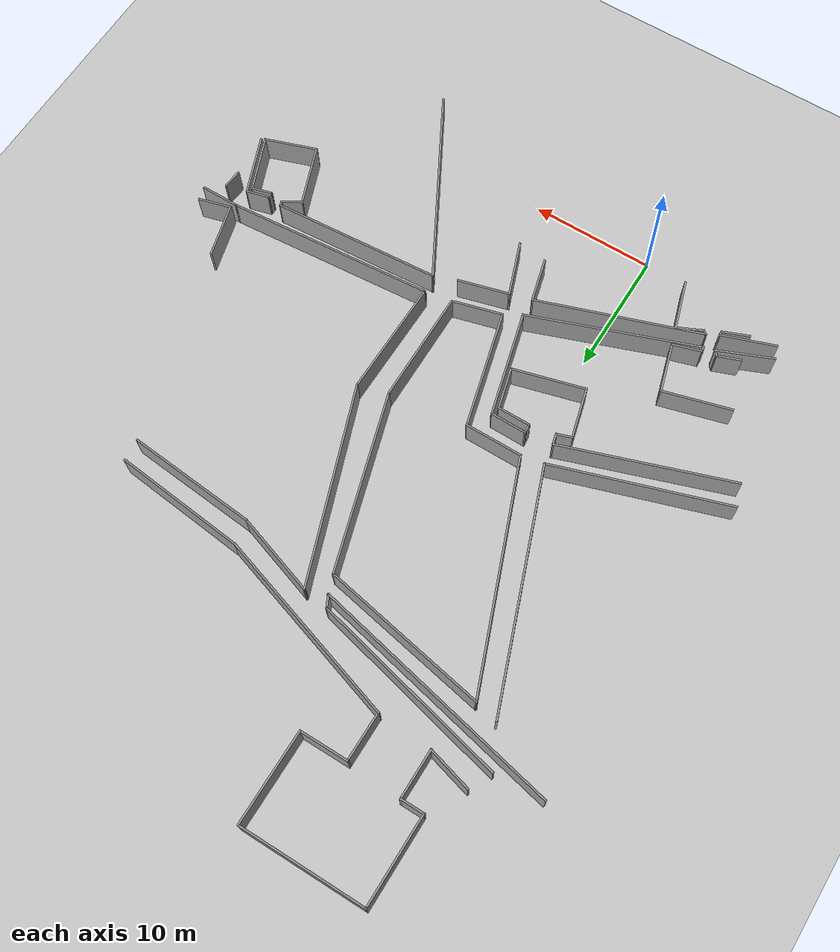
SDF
<sdf version="1.7">
 <world name="default">
  <model name="ground_plane">
   <static>1</static>
   <link name="link">
    <collision name="collision">
     <geometry><plane><normal>0 0 1</normal><size>100 100</size></plane></geometry>
     <surface><friction><ode><mu>100</mu><mu2>50</mu2></ode></friction></surface>
    </collision>
    <visual name="visual">
     <cast_shadows>0</cast_shadows>
     <geometry><plane><normal>0 0 1</normal><size>100 100</size></plane></geometry>
     <material>
      <script><uri>file://media/materials/scripts/gazebo.material</uri><name>Gazebo/Grey</name></script>
     </material>
    </visual>
   </link>
  </model>
  <model name="final_max_v1">
   <pose>-2.52311 0.689104 0 0 -0 0</pose>
   <link name="Wall_111">
    <collision name="Wall_111_Collision">
     <geometry><box><size>3.75 0.15 2.5</size></box></geometry>
     <pose>0 0 1.25 0 -0 0</pose>
    </collision>
    <visual name="Wall_111_Visual">
     <pose>0 0 1.25 0 -0 0</pose>
     <geometry><box><size>3.75 0.15 2.5</size></box></geometry>
     <material>
      <script><uri>file://media/materials/scripts/gazebo.material</uri><name>Gazebo/Grey</name></script>
      <ambient>1 1 1 1</ambient>
     </material>
     <meta><layer>0</layer></meta>
    </visual>
    <pose>-5.20804 41.6173 0 0 -0 -0.261799</pose>
   </link>
   <link name="Wall_112">
    <collision name="Wall_112_Collision">
     <geometry><box><size>4 0.15 2.5</size></box></geometry>
     <pose>0 0 1.25 0 -0 0</pose>
    </collision>
    <visual name="Wall_112_Visual">
     <pose>0 0 1.25 0 -0 0</pose>
     <geometry><box><size>4 0.15 2.5</size></box></geometry>
     <material>
      <script><uri>file://media/materials/scripts/gazebo.material</uri><name>Gazebo/Grey</name></script>
      <ambient>1 1 1 1</ambient>
     </material>
     <meta><layer>0</layer></meta>
    </visual>
    <pose>-3.46937 43.0764 0 0 -0 1.5708</pose>
   </link>
   <link name="Wall_113">
    <collision name="Wall_113_Collision">
     <geometry><box><size>2 0.15 2.5</size></box></geometry>
     <pose>0 0 1.25 0 -0 0</pose>
    </collision>
    <visual name="Wall_113_Visual">
     <pose>0 0 1.25 0 -0 0</pose>
     <geometry><box><size>2 0.15 2.5</size></box></geometry>
     <material>
      <script><uri>file://media/materials/scripts/gazebo.material</uri><name>Gazebo/Grey</name></script>
      <ambient>1 1 1 1</ambient>
     </material>
     <meta><layer>0</layer></meta>
    </visual>
    <pose>-4.39437 45.0014 0 0 -0 3.14159</pose>
   </link>
   <link name="Wall_114">
    <collision name="Wall_114_Collision">
     <geometry><box><size>7.25 0.15 2.5</size></box></geometry>
     <pose>0 0 1.25 0 -0 0</pose>
    </collision>
    <visual name="Wall_114_Visual">
     <pose>0 0 1.25 0 -0 0</pose>
     <geometry><box><size>7.25 0.15 2.5</size></box></geometry>
     <material>
      <script><uri>file://media/materials/scripts/gazebo.material</uri><name>Gazebo/Grey</name></script>
      <ambient>1 1 1 1</ambient>
     </material>
     <meta><layer>0</layer></meta>
    </visual>
    <pose>-5.31937 48.5514 0 0 -0 1.5708</pose>
   </link>
   <link name="Wall_115">
    <collision name="Wall_115_Collision">
     <geometry><box><size>10.25 0.15 2.5</size></box></geometry>
     <pose>0 0 1.25 0 -0 0</pose>
    </collision>
    <visual name="Wall_115_Visual">
     <pose>0 0 1.25 0 -0 0</pose>
     <geometry><box><size>10.25 0.15 2.5</size></box></geometry>
     <material>
      <script><uri>file://media/materials/scripts/gazebo.material</uri><name>Gazebo/Grey</name></script>
      <ambient>1 1 1 1</ambient>
     </material>
     <meta><layer>0</layer></meta>
    </visual>
    <pose>-0.269373 52.1014 0 0 -0 0</pose>
   </link>
   <link name="Wall_116">
    <collision name="Wall_116_Collision">
     <geometry><box><size>7.5 0.15 2.5</size></box></geometry>
     <pose>0 0 1.25 0 -0 0</pose>
    </collision>
    <visual name="Wall_116_Visual">
     <pose>0 0 1.25 0 -0 0</pose>
     <geometry><box><size>7.5 0.15 2.5</size></box></geometry>
     <material>
      <script><uri>file://media/materials/scripts/gazebo.material</uri><name>Gazebo/Grey</name></script>
      <ambient>1 1 1 1</ambient>
     </material>
     <meta><layer>0</layer></meta>
    </visual>
    <pose>4.78063 48.4264 0 0 -0 -1.5708</pose>
   </link>
   <link name="Wall_117">
    <collision name="Wall_117_Collision">
     <geometry><box><size>4 0.15 2.5</size></box></geometry>
     <pose>0 0 1.25 0 -0 0</pose>
    </collision>
    <visual name="Wall_117_Visual">
     <pose>0 0 1.25 0 -0 0</pose>
     <geometry><box><size>4 0.15 2.5</size></box></geometry>
     <material>
      <script><uri>file://media/materials/scripts/gazebo.material</uri><name>Gazebo/Grey</name></script>
      <ambient>1 1 1 1</ambient>
     </material>
     <meta><layer>0</layer></meta>
    </visual>
    <pose>2.85563 44.7514 0 0 -0 3.14159</pose>
   </link>
   <link name="Wall_118">
    <collision name="Wall_118_Collision">
     <geometry><box><size>4 0.15 2.5</size></box></geometry>
     <pose>0 0 1.25 0 -0 0</pose>
    </collision>
    <visual name="Wall_118_Visual">
     <pose>0 0 1.25 0 -0 0</pose>
     <geometry><box><size>4 0.15 2.5</size></box></geometry>
     <material>
      <script><uri>file://media/materials/scripts/gazebo.material</uri><name>Gazebo/Grey</name></script>
      <ambient>1 1 1 1</ambient>
     </material>
     <meta><layer>0</layer></meta>
    </visual>
    <pose>0.930627 42.8264 0 0 -0 -1.5708</pose>
   </link>
   <link name="Wall_119">
    <collision name="Wall_119_Collision">
     <geometry><box><size>16.165 0.15 2.5</size></box></geometry>
     <pose>0 0 1.25 0 -0 0</pose>
    </collision>
    <visual name="Wall_119_Visual">
     <pose>0 0 1.25 0 -0 0</pose>
     <geometry><box><size>16.165 0.15 2.5</size></box></geometry>
     <material>
      <script><uri>file://media/materials/scripts/gazebo.material</uri><name>Gazebo/Grey</name></script>
      <ambient>1 1 1 1</ambient>
     </material>
     <meta><layer>0</layer></meta>
    </visual>
    <pose>8.5693 38.4991 0 0 -0 -0.304697</pose>
   </link>
   <link name="Wall_120">
    <collision name="Wall_120_Collision">
     <geometry><box><size>10.7874 0.15 2.5</size></box></geometry>
     <pose>0 0 1.25 0 -0 0</pose>
    </collision>
    <visual name="Wall_120_Visual">
     <pose>0 0 1.25 0 -0 0</pose>
     <geometry><box><size>10.7874 0.15 2.5</size></box></geometry>
     <material>
      <script><uri>file://media/materials/scripts/gazebo.material</uri><name>Gazebo/Grey</name></script>
      <ambient>1 1 1 1</ambient>
     </material>
     <meta><layer>0</layer></meta>
    </visual>
    <pose>21.498 35.5448 0 0 -0 -0.103972</pose>
   </link>
   <link name="Wall_159">
    <collision name="Wall_159_Collision">
     <geometry><box><size>16.3963 0.15 2.5</size></box></geometry>
     <pose>0 0 1.25 0 -0 0</pose>
    </collision>
    <visual name="Wall_159_Visual">
     <pose>0 0 1.25 0 -0 0</pose>
     <geometry><box><size>16.3963 0.15 2.5</size></box></geometry>
     <material>
      <script><uri>file://media/materials/scripts/gazebo.material</uri><name>Gazebo/Grey</name></script>
      <ambient>1 1 1 1</ambient>
     </material>
     <meta><layer>0</layer></meta>
    </visual>
    <pose>0.113766 38.435 0 0 -0 -0.228497</pose>
   </link>
   <link name="Wall_164">
    <collision name="Wall_164_Collision">
     <geometry><box><size>9.16316 0.15 2.5</size></box></geometry>
     <pose>0 0 1.25 0 -0 0</pose>
    </collision>
    <visual name="Wall_164_Visual">
     <pose>0 0 1.25 0 -0 0</pose>
     <geometry><box><size>9.16316 0.15 2.5</size></box></geometry>
     <material>
      <script><uri>file://media/materials/scripts/gazebo.material</uri><name>Gazebo/Grey</name></script>
      <ambient>1 1 1 1</ambient>
     </material>
     <meta><layer>0</layer></meta>
    </visual>
    <pose>13.3066 15.8045 0 0 -0 -1.56262</pose>
   </link>
   <link name="Wall_167">
    <collision name="Wall_167_Collision">
     <geometry><box><size>4 0.15 2.5</size></box></geometry>
     <pose>0 0 1.25 0 -0 0</pose>
    </collision>
    <visual name="Wall_167_Visual">
     <pose>0 0 1.25 0 -0 0</pose>
     <geometry><box><size>4 0.15 2.5</size></box></geometry>
     <material>
      <script><uri>file://media/materials/scripts/gazebo.material</uri><name>Gazebo/Grey</name></script>
      <ambient>1 1 1 1</ambient>
     </material>
     <meta><layer>0</layer></meta>
    </visual>
    <pose>11.3094 10.7013 0 0 -0 0.261799</pose>
   </link>
   <link name="Wall_169">
    <collision name="Wall_169_Collision">
     <geometry><box><size>9.75 0.15 2.5</size></box></geometry>
     <pose>0 0 1.25 0 -0 0</pose>
    </collision>
    <visual name="Wall_169_Visual">
     <pose>0 0 1.25 0 -0 0</pose>
     <geometry><box><size>9.75 0.15 2.5</size></box></geometry>
     <material>
      <script><uri>file://media/materials/scripts/gazebo.material</uri><name>Gazebo/Grey</name></script>
      <ambient>1 1 1 1</ambient>
     </material>
     <meta><layer>0</layer></meta>
    </visual>
    <pose>8.20764 14.8395 0 0 -0 1.8326</pose>
   </link>
   <link name="Wall_171">
    <collision name="Wall_171_Collision">
     <geometry><box><size>4.75 0.15 2.5</size></box></geometry>
     <pose>0 0 1.25 0 -0 0</pose>
    </collision>
    <visual name="Wall_171_Visual">
     <pose>0 0 1.25 0 -0 0</pose>
     <geometry><box><size>4.75 0.15 2.5</size></box></geometry>
     <material>
      <script><uri>file://media/materials/scripts/gazebo.material</uri><name>Gazebo/Grey</name></script>
      <ambient>1 1 1 1</ambient>
     </material>
     <meta><layer>0</layer></meta>
    </visual>
    <pose>4.66531 19.476 0 0 -0 3.14159</pose>
   </link>
   <link name="Wall_191">
    <collision name="Wall_191_Collision">
     <geometry><box><size>20.8467 0.15 2.5</size></box></geometry>
     <pose>0 0 1.25 0 -0 0</pose>
    </collision>
    <visual name="Wall_191_Visual">
     <pose>0 0 1.25 0 -0 0</pose>
     <geometry><box><size>20.8467 0.15 2.5</size></box></geometry>
     <material>
      <script><uri>file://media/materials/scripts/gazebo.material</uri><name>Gazebo/Grey</name></script>
      <ambient>1 1 1 1</ambient>
     </material>
     <meta><layer>0</layer></meta>
    </visual>
    <pose>-1.63858 37.8537 0 0 -0 -0.210472</pose>
   </link>
   <link name="Wall_193">
    <collision name="Wall_193_Collision">
     <geometry><box><size>1.1617 0.15 2.5</size></box></geometry>
     <pose>0 0 1.25 0 -0 0</pose>
    </collision>
    <visual name="Wall_193_Visual">
     <pose>0 0 1.25 0 -0 0</pose>
     <geometry><box><size>1.1617 0.15 2.5</size></box></geometry>
     <material>
      <script><uri>file://media/materials/scripts/gazebo.material</uri><name>Gazebo/Grey</name></script>
      <ambient>1 1 1 1</ambient>
     </material>
     <meta><layer>0</layer></meta>
    </visual>
    <pose>8.25359 36.1433 0 0 -0 2.03799</pose>
   </link>
   <link name="Wall_211">
    <collision name="Wall_211_Collision">
     <geometry><box><size>14.7253 0.15 2.5</size></box></geometry>
     <pose>0 0 1.25 0 -0 0</pose>
    </collision>
    <visual name="Wall_211_Visual">
     <pose>0 0 1.25 0 -0 0</pose>
     <geometry><box><size>14.7253 0.15 2.5</size></box></geometry>
     <material>
      <script><uri>file://media/materials/scripts/gazebo.material</uri><name>Gazebo/Grey</name></script>
      <ambient>1 1 1 1</ambient>
     </material>
     <meta><layer>0</layer></meta>
    </visual>
    <pose>11.1463 27.2824 0 0 -0 -1.27513</pose>
   </link>
   <link name="Wall_213">
    <collision name="Wall_213_Collision">
     <geometry><box><size>9.53445 0.15 2.5</size></box></geometry>
     <pose>0 0 1.25 0 -0 0</pose>
    </collision>
    <visual name="Wall_213_Visual">
     <pose>0 0 1.25 0 -0 0</pose>
     <geometry><box><size>9.53445 0.15 2.5</size></box></geometry>
     <material>
      <script><uri>file://media/materials/scripts/gazebo.material</uri><name>Gazebo/Grey</name></script>
      <ambient>1 1 1 1</ambient>
     </material>
     <meta><layer>0</layer></meta>
    </visual>
    <pose>15.6009 16.3138 0 0 -0 1.56099</pose>
   </link>
   <link name="Wall_215">
    <collision name="Wall_215_Collision">
     <geometry><box><size>16.389 0.15 2.5</size></box></geometry>
     <pose>0 0 1.25 0 -0 0</pose>
    </collision>
    <visual name="Wall_215_Visual">
     <pose>0 0 1.25 0 -0 0</pose>
     <geometry><box><size>16.389 0.15 2.5</size></box></geometry>
     <material>
      <script><uri>file://media/materials/scripts/gazebo.material</uri><name>Gazebo/Grey</name></script>
      <ambient>1 1 1 1</ambient>
     </material>
     <meta><layer>0</layer></meta>
    </visual>
    <pose>12.8869 28.6418 0 0 -0 1.91763</pose>
   </link>
   <link name="Wall_217">
    <collision name="Wall_217_Collision">
     <geometry><box><size>6.92872 0.15 2.5</size></box></geometry>
     <pose>0 0 1.25 0 -0 0</pose>
    </collision>
    <visual name="Wall_217_Visual">
     <pose>0 0 1.25 0 -0 0</pose>
     <geometry><box><size>6.92872 0.15 2.5</size></box></geometry>
     <material>
      <script><uri>file://media/materials/scripts/gazebo.material</uri><name>Gazebo/Grey</name></script>
      <ambient>1 1 1 1</ambient>
     </material>
     <meta><layer>0</layer></meta>
    </visual>
    <pose>13.3469 35.2198 0 0 -0 -0.317459</pose>
   </link>
   <link name="Wall_219">
    <collision name="Wall_219_Collision">
     <geometry><box><size>10.5866 0.15 2.5</size></box></geometry>
     <pose>0 0 1.25 0 -0 0</pose>
    </collision>
    <visual name="Wall_219_Visual">
     <pose>0 0 1.25 0 -0 0</pose>
     <geometry><box><size>10.5866 0.15 2.5</size></box></geometry>
     <material>
      <script><uri>file://media/materials/scripts/gazebo.material</uri><name>Gazebo/Grey</name></script>
      <ambient>1 1 1 1</ambient>
     </material>
     <meta><layer>0</layer></meta>
    </visual>
    <pose>21.7649 33.7018 0 0 -0 -0.088266</pose>
   </link>
   <link name="Wall_235">
    <collision name="Wall_235_Collision">
     <geometry><box><size>5.08472 0.15 2.5</size></box></geometry>
     <pose>0 0 1.25 0 -0 0</pose>
    </collision>
    <visual name="Wall_235_Visual">
     <pose>0 0 1.25 0 -0 0</pose>
     <geometry><box><size>5.08472 0.15 2.5</size></box></geometry>
     <material>
      <script><uri>file://media/materials/scripts/gazebo.material</uri><name>Gazebo/Grey</name></script>
      <ambient>1 1 1 1</ambient>
     </material>
     <meta><layer>0</layer></meta>
    </visual>
    <pose>33.2205 9.10764 0 0 -0 1.94607</pose>
   </link>
   <link name="Wall_237">
    <collision name="Wall_237_Collision">
     <geometry><box><size>16.5284 0.15 2.5</size></box></geometry>
     <pose>0 0 1.25 0 -0 0</pose>
    </collision>
    <visual name="Wall_237_Visual">
     <pose>0 0 1.25 0 -0 0</pose>
     <geometry><box><size>16.5284 0.15 2.5</size></box></geometry>
     <material>
      <script><uri>file://media/materials/scripts/gazebo.material</uri><name>Gazebo/Grey</name></script>
      <ambient>1 1 1 1</ambient>
     </material>
     <meta><layer>0</layer></meta>
    </visual>
    <pose>19.7248 2.9859 0 0 -0 -1.06535</pose>
   </link>
   <link name="Wall_240">
    <collision name="Wall_240_Collision">
     <geometry><box><size>16.9278 0.15 2.5</size></box></geometry>
     <pose>0 0 1.25 0 -0 0</pose>
    </collision>
    <visual name="Wall_240_Visual">
     <pose>0 0 1.25 0 -0 0</pose>
     <geometry><box><size>16.9278 0.15 2.5</size></box></geometry>
     <material>
      <script><uri>file://media/materials/scripts/gazebo.material</uri><name>Gazebo/Grey</name></script>
      <ambient>1 1 1 1</ambient>
     </material>
     <meta><layer>0</layer></meta>
    </visual>
    <pose>23.9191 12.2642 0 0 -0 0.076646</pose>
   </link>
   <link name="Wall_241">
    <collision name="Wall_241_Collision">
     <geometry><box><size>3.25 0.15 2.5</size></box></geometry>
     <pose>0 0 1.25 0 -0 0</pose>
    </collision>
    <visual name="Wall_241_Visual">
     <pose>0 0 1.25 0 -0 0</pose>
     <geometry><box><size>3.25 0.15 2.5</size></box></geometry>
     <material>
      <script><uri>file://media/materials/scripts/gazebo.material</uri><name>Gazebo/Grey</name></script>
      <ambient>1 1 1 1</ambient>
     </material>
     <meta><layer>0</layer></meta>
    </visual>
    <pose>33.8334 12.9065 0 0 -0 0</pose>
   </link>
   <link name="Wall_243">
    <collision name="Wall_243_Collision">
     <geometry><box><size>2.75 0.15 2.5</size></box></geometry>
     <pose>0 0 1.25 0 -0 0</pose>
    </collision>
    <visual name="Wall_243_Visual">
     <pose>0 0 1.25 0 -0 0</pose>
     <geometry><box><size>2.75 0.15 2.5</size></box></geometry>
     <material>
      <script><uri>file://media/materials/scripts/gazebo.material</uri><name>Gazebo/Grey</name></script>
      <ambient>1 1 1 1</ambient>
     </material>
     <meta><layer>0</layer></meta>
    </visual>
    <pose>33.843 13.6326 0 0 -0 -2.87979</pose>
   </link>
   <link name="Wall_244">
    <collision name="Wall_244_Collision">
     <geometry><box><size>4.5 0.15 2.5</size></box></geometry>
     <pose>0 0 1.25 0 -0 0</pose>
    </collision>
    <visual name="Wall_244_Visual">
     <pose>0 0 1.25 0 -0 0</pose>
     <geometry><box><size>4.5 0.15 2.5</size></box></geometry>
     <material>
      <script><uri>file://media/materials/scripts/gazebo.material</uri><name>Gazebo/Grey</name></script>
      <ambient>1 1 1 1</ambient>
     </material>
     <meta><layer>0</layer></meta>
    </visual>
    <pose>32.0243 15.397 0 0 -0 1.8326</pose>
   </link>
   <link name="Wall_297">
    <collision name="Wall_297_Collision">
     <geometry><box><size>1.5986 0.15 2.5</size></box></geometry>
     <pose>0 0 1.25 0 -0 0</pose>
    </collision>
    <visual name="Wall_297_Visual">
     <pose>0 0 1.25 0 -0 0</pose>
     <geometry><box><size>1.5986 0.15 2.5</size></box></geometry>
     <material>
      <script><uri>file://media/materials/scripts/gazebo.material</uri><name>Gazebo/Grey</name></script>
      <ambient>1 1 1 1</ambient>
     </material>
     <meta><layer>0</layer></meta>
    </visual>
    <pose>33.9562 11.0945 0 0 -0 -1.65394</pose>
   </link>
   <link name="Wall_332">
    <collision name="Wall_332_Collision">
     <geometry><box><size>2.01562 0.15 2.5</size></box></geometry>
     <pose>0 0 1.25 0 -0 0</pose>
    </collision>
    <visual name="Wall_332_Visual">
     <pose>0 0 1.25 0 -0 0</pose>
     <geometry><box><size>2.01562 0.15 2.5</size></box></geometry>
     <material>
      <script><uri>file://media/materials/scripts/gazebo.material</uri><name>Gazebo/Grey</name></script>
      <ambient>1 1 1 1</ambient>
     </material>
     <meta><layer>0</layer></meta>
    </visual>
    <pose>-6.96698 4.42497 0 0 -0 -2.77905</pose>
   </link>
   <link name="Wall_334">
    <collision name="Wall_334_Collision">
     <geometry><box><size>5.63652 0.15 2.5</size></box></geometry>
     <pose>0 0 1.25 0 -0 0</pose>
    </collision>
    <visual name="Wall_334_Visual">
     <pose>0 0 1.25 0 -0 0</pose>
     <geometry><box><size>5.63652 0.15 2.5</size></box></geometry>
     <material>
      <script><uri>file://media/materials/scripts/gazebo.material</uri><name>Gazebo/Grey</name></script>
      <ambient>1 1 1 1</ambient>
     </material>
     <meta><layer>0</layer></meta>
    </visual>
    <pose>-6.57601 8.78584 0 0 -0 0.266252</pose>
   </link>
   <link name="Wall_335">
    <collision name="Wall_335_Collision">
     <geometry><box><size>4.16566 0.15 2.5</size></box></geometry>
     <pose>0 0 1.25 0 -0 0</pose>
    </collision>
    <visual name="Wall_335_Visual">
     <pose>0 0 1.25 0 -0 0</pose>
     <geometry><box><size>4.16566 0.15 2.5</size></box></geometry>
     <material>
      <script><uri>file://media/materials/scripts/gazebo.material</uri><name>Gazebo/Grey</name></script>
      <ambient>1 1 1 1</ambient>
     </material>
     <meta><layer>0</layer></meta>
    </visual>
    <pose>-3.35798 7.58284 0 0 -0 -1.28221</pose>
   </link>
   <link name="Wall_336">
    <collision name="Wall_336_Collision">
     <geometry><box><size>2.41423 0.15 2.5</size></box></geometry>
     <pose>0 0 1.25 0 -0 0</pose>
    </collision>
    <visual name="Wall_336_Visual">
     <pose>0 0 1.25 0 -0 0</pose>
     <geometry><box><size>2.41423 0.15 2.5</size></box></geometry>
     <material>
      <script><uri>file://media/materials/scripts/gazebo.material</uri><name>Gazebo/Grey</name></script>
      <ambient>1 1 1 1</ambient>
     </material>
     <meta><layer>0</layer></meta>
    </visual>
    <pose>-3.86926 5.32722 0 0 -0 -2.84505</pose>
   </link>
   <link name="Wall_345">
    <collision name="Wall_345_Collision">
     <geometry><box><size>4.15324 0.15 2.5</size></box></geometry>
     <pose>0 0 1.25 0 -0 0</pose>
    </collision>
    <visual name="Wall_345_Visual">
     <pose>0 0 1.25 0 -0 0</pose>
     <geometry><box><size>4.15324 0.15 2.5</size></box></geometry>
     <material>
      <script><uri>file://media/materials/scripts/gazebo.material</uri><name>Gazebo/Grey</name></script>
      <ambient>1 1 1 1</ambient>
     </material>
     <meta><layer>0</layer></meta>
    </visual>
    <pose>-1.7389 2.34911 0 0 -0 1.87602</pose>
   </link>
   <link name="Wall_352">
    <collision name="Wall_352_Collision">
     <geometry><box><size>2.28681 0.15 2.5</size></box></geometry>
     <pose>0 0 1.25 0 -0 0</pose>
    </collision>
    <visual name="Wall_352_Visual">
     <pose>0 0 1.25 0 -0 0</pose>
     <geometry><box><size>2.28681 0.15 2.5</size></box></geometry>
     <material>
      <script><uri>file://media/materials/scripts/gazebo.material</uri><name>Gazebo/Grey</name></script>
      <ambient>1 1 1 1</ambient>
     </material>
     <meta><layer>0</layer></meta>
    </visual>
    <pose>-6.47244 2.34911 0 0 -0 0.375961</pose>
   </link>
   <link name="Wall_354">
    <collision name="Wall_354_Collision">
     <geometry><box><size>2.27975 0.15 2.5</size></box></geometry>
     <pose>0 0 1.25 0 -0 0</pose>
    </collision>
    <visual name="Wall_354_Visual">
     <pose>0 0 1.25 0 -0 0</pose>
     <geometry><box><size>2.27975 0.15 2.5</size></box></geometry>
     <material>
      <script><uri>file://media/materials/scripts/gazebo.material</uri><name>Gazebo/Grey</name></script>
      <ambient>1 1 1 1</ambient>
     </material>
     <meta><layer>0</layer></meta>
    </visual>
    <pose>-3.30803 3.81363 0 0 -0 -2.7109</pose>
   </link>
   <link name="Wall_364">
    <collision name="Wall_364_Collision">
     <geometry><box><size>0.497007 0.15 2.5</size></box></geometry>
     <pose>0 0 1.25 0 -0 0</pose>
    </collision>
    <visual name="Wall_364_Visual">
     <pose>0 0 1.25 0 -0 0</pose>
     <geometry><box><size>0.497007 0.15 2.5</size></box></geometry>
     <material>
      <script><uri>file://media/materials/scripts/gazebo.material</uri><name>Gazebo/Grey</name></script>
      <ambient>1 1 1 1</ambient>
     </material>
     <meta><layer>0</layer></meta>
    </visual>
    <pose>-5.98113 4.62472 0 0 -0 2.28524</pose>
   </link>
   <link name="Wall_366">
    <collision name="Wall_366_Collision">
     <geometry><box><size>0.515419 0.15 2.5</size></box></geometry>
     <pose>0 0 1.25 0 -0 0</pose>
    </collision>
    <visual name="Wall_366_Visual">
     <pose>0 0 1.25 0 -0 0</pose>
     <geometry><box><size>0.515419 0.15 2.5</size></box></geometry>
     <material>
      <script><uri>file://media/materials/scripts/gazebo.material</uri><name>Gazebo/Grey</name></script>
      <ambient>1 1 1 1</ambient>
     </material>
     <meta><layer>0</layer></meta>
    </visual>
    <pose>-4.94543 4.8138 0 0 -0 1.60655</pose>
   </link>
   <link name="Wall_368">
    <collision name="Wall_368_Collision">
     <geometry><box><size>0.458009 0.15 2.5</size></box></geometry>
     <pose>0 0 1.25 0 -0 0</pose>
    </collision>
    <visual name="Wall_368_Visual">
     <pose>0 0 1.25 0 -0 0</pose>
     <geometry><box><size>0.458009 0.15 2.5</size></box></geometry>
     <material>
      <script><uri>file://media/materials/scripts/gazebo.material</uri><name>Gazebo/Grey</name></script>
      <ambient>1 1 1 1</ambient>
     </material>
     <meta><layer>0</layer></meta>
    </visual>
    <pose>-5.4839 2.89531 0 0 -0 -1.53674</pose>
   </link>
   <link name="Wall_370">
    <collision name="Wall_370_Collision">
     <geometry><box><size>0.49586 0.15 2.5</size></box></geometry>
     <pose>0 0 1.25 0 -0 0</pose>
    </collision>
    <visual name="Wall_370_Visual">
     <pose>0 0 1.25 0 -0 0</pose>
     <geometry><box><size>0.49586 0.15 2.5</size></box></geometry>
     <material>
      <script><uri>file://media/materials/scripts/gazebo.material</uri><name>Gazebo/Grey</name></script>
      <ambient>1 1 1 1</ambient>
     </material>
     <meta><layer>0</layer></meta>
    </visual>
    <pose>-4.41813 3.46707 0 0 -0 -0.602649</pose>
   </link>
   <link name="Wall_372">
    <collision name="Wall_372_Collision">
     <geometry><box><size>14.0321 0.15 2.5</size></box></geometry>
     <pose>0 0 1.25 0 -0 0</pose>
    </collision>
    <visual name="Wall_372_Visual">
     <pose>0 0 1.25 0 -0 0</pose>
     <geometry><box><size>14.0321 0.15 2.5</size></box></geometry>
     <material>
      <script><uri>file://media/materials/scripts/gazebo.material</uri><name>Gazebo/Grey</name></script>
      <ambient>1 1 1 1</ambient>
     </material>
     <meta><layer>0</layer></meta>
    </visual>
    <pose>1.57832 7.01954 0 0 -0 0.351268</pose>
   </link>
   <link name="Wall_374">
    <collision name="Wall_374_Collision">
     <geometry><box><size>8.75 0.15 2.5</size></box></geometry>
     <pose>0 0 1.25 0 -0 0</pose>
    </collision>
    <visual name="Wall_374_Visual">
     <pose>0 0 1.25 0 -0 0</pose>
     <geometry><box><size>8.75 0.15 2.5</size></box></geometry>
     <material>
      <script><uri>file://media/materials/scripts/gazebo.material</uri><name>Gazebo/Grey</name></script>
      <ambient>1 1 1 1</ambient>
     </material>
     <meta><layer>0</layer></meta>
    </visual>
    <pose>6.98261 13.5614 0 0 -0 1.8326</pose>
   </link>
   <link name="Wall_378">
    <collision name="Wall_378_Collision">
     <geometry><box><size>18.7028 0.15 2.5</size></box></geometry>
     <pose>0 0 1.25 0 -0 0</pose>
    </collision>
    <visual name="Wall_378_Visual">
     <pose>0 0 1.25 0 -0 0</pose>
     <geometry><box><size>18.7028 0.15 2.5</size></box></geometry>
     <material>
      <script><uri>file://media/materials/scripts/gazebo.material</uri><name>Gazebo/Grey</name></script>
      <ambient>1 1 1 1</ambient>
     </material>
     <meta><layer>0</layer></meta>
    </visual>
    <pose>-1.00084 28.1201 0 0 -0 1.94215</pose>
   </link>
   <link name="Wall_379">
    <collision name="Wall_379_Collision">
     <geometry><box><size>13.7731 0.15 2.5</size></box></geometry>
     <pose>0 0 1.25 0 -0 0</pose>
    </collision>
    <visual name="Wall_379_Visual">
     <pose>0 0 1.25 0 -0 0</pose>
     <geometry><box><size>13.7731 0.15 2.5</size></box></geometry>
     <material>
      <script><uri>file://media/materials/scripts/gazebo.material</uri><name>Gazebo/Grey</name></script>
      <ambient>1 1 1 1</ambient>
     </material>
     <meta><layer>0</layer></meta>
    </visual>
    <pose>2.32793 35.509 0 0 -0 -0.18533</pose>
   </link>
   <link name="Wall_381">
    <collision name="Wall_381_Collision">
     <geometry><box><size>14.3834 0.15 2.5</size></box></geometry>
     <pose>0 0 1.25 0 -0 0</pose>
    </collision>
    <visual name="Wall_381_Visual">
     <pose>0 0 1.25 0 -0 0</pose>
     <geometry><box><size>14.3834 0.15 2.5</size></box></geometry>
     <material>
      <script><uri>file://media/materials/scripts/gazebo.material</uri><name>Gazebo/Grey</name></script>
      <ambient>1 1 1 1</ambient>
     </material>
     <meta><layer>0</layer></meta>
    </visual>
    <pose>-6.23233 16.9329 0 0 -0 0.313621</pose>
   </link>
   <link name="Wall_383">
    <collision name="Wall_383_Collision">
     <geometry><box><size>19.4012 0.15 2.5</size></box></geometry>
     <pose>0 0 1.25 0 -0 0</pose>
    </collision>
    <visual name="Wall_383_Visual">
     <pose>0 0 1.25 0 -0 0</pose>
     <geometry><box><size>19.4012 0.15 2.5</size></box></geometry>
     <material>
      <script><uri>file://media/materials/scripts/gazebo.material</uri><name>Gazebo/Grey</name></script>
      <ambient>1 1 1 1</ambient>
     </material>
     <meta><layer>0</layer></meta>
    </visual>
    <pose>-2.84755 28.1393 0 0 -0 -1.21147</pose>
   </link>
   <link name="Wall_448">
    <collision name="Wall_448_Collision">
     <geometry><box><size>4.52238 0.15 2.5</size></box></geometry>
     <pose>0 0 1.25 0 -0 0</pose>
    </collision>
    <visual name="Wall_448_Visual">
     <pose>0 0 1.25 0 -0 0</pose>
     <geometry><box><size>4.52238 0.15 2.5</size></box></geometry>
     <material>
      <script><uri>file://media/materials/scripts/gazebo.material</uri><name>Gazebo/Grey</name></script>
      <ambient>1 1 1 1</ambient>
     </material>
     <meta><layer>0</layer></meta>
    </visual>
    <pose>-7.5526 2.32702 0 0 -0 0.336675</pose>
   </link>
   <link name="Wall_450">
    <collision name="Wall_450_Collision">
     <geometry><box><size>4.64704 0.15 2.5</size></box></geometry>
     <pose>0 0 1.25 0 -0 0</pose>
    </collision>
    <visual name="Wall_450_Visual">
     <pose>0 0 1.25 0 -0 0</pose>
     <geometry><box><size>4.64704 0.15 2.5</size></box></geometry>
     <material>
      <script><uri>file://media/materials/scripts/gazebo.material</uri><name>Gazebo/Grey</name></script>
      <ambient>1 1 1 1</ambient>
     </material>
     <meta><layer>0</layer></meta>
    </visual>
    <pose>-7.88723 3.50809 0 0 -0 0.398042</pose>
   </link>
   <link name="Wall_454">
    <collision name="Wall_454_Collision">
     <geometry><box><size>3.75 0.15 2.5</size></box></geometry>
     <pose>0 0 1.25 0 -0 0</pose>
    </collision>
    <visual name="Wall_454_Visual">
     <pose>0 0 1.25 0 -0 0</pose>
     <geometry><box><size>3.75 0.15 2.5</size></box></geometry>
     <material>
      <script><uri>file://media/materials/scripts/gazebo.material</uri><name>Gazebo/Grey</name></script>
      <ambient>1 1 1 1</ambient>
     </material>
     <meta><layer>0</layer></meta>
    </visual>
    <pose>8.61161 6.18595 0 0 -0 1.8326</pose>
   </link>
   <link name="Wall_455">
    <collision name="Wall_455_Collision">
     <geometry><box><size>13.5834 0.15 2.5</size></box></geometry>
     <pose>0 0 1.25 0 -0 0</pose>
    </collision>
    <visual name="Wall_455_Visual">
     <pose>0 0 1.25 0 -0 0</pose>
     <geometry><box><size>13.5834 0.15 2.5</size></box></geometry>
     <material>
      <script><uri>file://media/materials/scripts/gazebo.material</uri><name>Gazebo/Grey</name></script>
      <ambient>1 1 1 1</ambient>
     </material>
     <meta><layer>0</layer></meta>
    </visual>
    <pose>1.79257 5.74485 0 0 -0 -2.81108</pose>
   </link>
   <link name="Wall_473">
    <collision name="Wall_473_Collision">
     <geometry><box><size>4.25 0.15 2.5</size></box></geometry>
     <pose>0 0 1.25 0 -0 0</pose>
    </collision>
    <visual name="Wall_473_Visual">
     <pose>0 0 1.25 0 -0 0</pose>
     <geometry><box><size>4.25 0.15 2.5</size></box></geometry>
     <material>
      <script><uri>file://media/materials/scripts/gazebo.material</uri><name>Gazebo/Grey</name></script>
      <ambient>1 1 1 1</ambient>
     </material>
     <meta><layer>0</layer></meta>
    </visual>
    <pose>11.8924 8.9301 0 0 -0 0.261799</pose>
   </link>
   <link name="Wall_608">
    <collision name="Wall_608_Collision">
     <geometry><box><size>4.65169 0.15 2.5</size></box></geometry>
     <pose>0 0 1.25 0 -0 0</pose>
    </collision>
    <visual name="Wall_608_Visual">
     <pose>0 0 1.25 0 -0 0</pose>
     <geometry><box><size>4.65169 0.15 2.5</size></box></geometry>
     <material>
      <script><uri>file://media/materials/scripts/gazebo.material</uri><name>Gazebo/Grey</name></script>
      <ambient>1 1 1 1</ambient>
     </material>
     <meta><layer>0</layer></meta>
    </visual>
    <pose>10.6936 6.28862 0 0 -0 1.92528</pose>
   </link>
   <link name="Wall_610">
    <collision name="Wall_610_Collision">
     <geometry><box><size>14.0742 0.15 2.5</size></box></geometry>
     <pose>0 0 1.25 0 -0 0</pose>
    </collision>
    <visual name="Wall_610_Visual">
     <pose>0 0 1.25 0 -0 0</pose>
     <geometry><box><size>14.0742 0.15 2.5</size></box></geometry>
     <material>
      <script><uri>file://media/materials/scripts/gazebo.material</uri><name>Gazebo/Grey</name></script>
      <ambient>1 1 1 1</ambient>
     </material>
     <meta><layer>0</layer></meta>
    </visual>
    <pose>-5.81988 15.2164 0 0 -0 0.32937</pose>
   </link>
   <link name="Wall_612">
    <collision name="Wall_612_Collision">
     <geometry><box><size>3.03133 0.15 2.5</size></box></geometry>
     <pose>0 0 1.25 0 -0 0</pose>
    </collision>
    <visual name="Wall_612_Visual">
     <pose>0 0 1.25 0 -0 0</pose>
     <geometry><box><size>3.03133 0.15 2.5</size></box></geometry>
     <material>
      <script><uri>file://media/materials/scripts/gazebo.material</uri><name>Gazebo/Grey</name></script>
      <ambient>1 1 1 1</ambient>
     </material>
     <meta><layer>0</layer></meta>
    </visual>
    <pose>4.42906 17.7261 0 0 -0 -0.007849</pose>
   </link>
   <link name="Wall_614">
    <collision name="Wall_614_Collision">
     <geometry><box><size>1 0.15 2.5</size></box></geometry>
     <pose>0 0 1.25 0 -0 0</pose>
    </collision>
    <visual name="Wall_614_Visual">
     <pose>0 0 1.25 0 -0 0</pose>
     <geometry><box><size>1 0.15 2.5</size></box></geometry>
     <material>
      <script><uri>file://media/materials/scripts/gazebo.material</uri><name>Gazebo/Grey</name></script>
      <ambient>1 1 1 1</ambient>
     </material>
     <meta><layer>0</layer></meta>
    </visual>
    <pose>0.877987 17.0578 0 0 -0 -1.309</pose>
   </link>
   <link name="Wall_615">
    <collision name="Wall_615_Collision">
     <geometry><box><size>1.37575 0.15 2.5</size></box></geometry>
     <pose>0 0 1.25 0 -0 0</pose>
    </collision>
    <visual name="Wall_615_Visual">
     <pose>0 0 1.25 0 -0 0</pose>
     <geometry><box><size>1.37575 0.15 2.5</size></box></geometry>
     <material>
      <script><uri>file://media/materials/scripts/gazebo.material</uri><name>Gazebo/Grey</name></script>
      <ambient>1 1 1 1</ambient>
     </material>
     <meta><layer>0</layer></meta>
    </visual>
    <pose>0.406981 16.4522 0 0 -0 -2.81769</pose>
   </link>
   <link name="Wall_616">
    <collision name="Wall_616_Collision">
     <geometry><box><size>4.25 0.15 2.5</size></box></geometry>
     <pose>0 0 1.25 0 -0 0</pose>
    </collision>
    <visual name="Wall_616_Visual">
     <pose>0 0 1.25 0 -0 0</pose>
     <geometry><box><size>4.25 0.15 2.5</size></box></geometry>
     <material>
      <script><uri>file://media/materials/scripts/gazebo.material</uri><name>Gazebo/Grey</name></script>
      <ambient>1 1 1 1</ambient>
     </material>
     <meta><layer>0</layer></meta>
    </visual>
    <pose>0.356556 14.277 0 0 -0 -1.309</pose>
   </link>
   <link name="Wall_617">
    <collision name="Wall_617_Collision">
     <geometry><box><size>6 0.15 2.5</size></box></geometry>
     <pose>0 0 1.25 0 -0 0</pose>
    </collision>
    <visual name="Wall_617_Visual">
     <pose>0 0 1.25 0 -0 0</pose>
     <geometry><box><size>6 0.15 2.5</size></box></geometry>
     <material>
      <script><uri>file://media/materials/scripts/gazebo.material</uri><name>Gazebo/Grey</name></script>
      <ambient>1 1 1 1</ambient>
     </material>
     <meta><layer>0</layer></meta>
    </visual>
    <pose>3.71247 13.0539 0 0 -0 0.261799</pose>
   </link>
   <link name="Wall_618">
    <collision name="Wall_618_Collision">
     <geometry><box><size>3.5 0.15 2.5</size></box></geometry>
     <pose>0 0 1.25 0 -0 0</pose>
    </collision>
    <visual name="Wall_618_Visual">
     <pose>0 0 1.25 0 -0 0</pose>
     <geometry><box><size>3.5 0.15 2.5</size></box></geometry>
     <material>
      <script><uri>file://media/materials/scripts/gazebo.material</uri><name>Gazebo/Grey</name></script>
      <ambient>1 1 1 1</ambient>
     </material>
     <meta><layer>0</layer></meta>
    </visual>
    <pose>6.10428 15.4289 0 0 -0 1.8326</pose>
   </link>
   <link name="Wall_619">
    <collision name="Wall_619_Collision">
     <geometry><box><size>2.75 0.15 2.5</size></box></geometry>
     <pose>0 0 1.25 0 -0 0</pose>
    </collision>
    <visual name="Wall_619_Visual">
     <pose>0 0 1.25 0 -0 0</pose>
     <geometry><box><size>2.75 0.15 2.5</size></box></geometry>
     <material>
      <script><uri>file://media/materials/scripts/gazebo.material</uri><name>Gazebo/Grey</name></script>
      <ambient>1 1 1 1</ambient>
     </material>
     <meta><layer>0</layer></meta>
    </visual>
    <pose>4.37076 17.0468 0 0 -0 3.14159</pose>
   </link>
   <link name="Wall_620">
    <collision name="Wall_620_Collision">
     <geometry><box><size>0.845545 0.15 2.5</size></box></geometry>
     <pose>0 0 1.25 0 -0 0</pose>
    </collision>
    <visual name="Wall_620_Visual">
     <pose>0 0 1.25 0 -0 0</pose>
     <geometry><box><size>0.845545 0.15 2.5</size></box></geometry>
     <material>
      <script><uri>file://media/materials/scripts/gazebo.material</uri><name>Gazebo/Grey</name></script>
      <ambient>1 1 1 1</ambient>
     </material>
     <meta><layer>0</layer></meta>
    </visual>
    <pose>3.0296 17.3921 0 0 -0 1.68941</pose>
   </link>
   <link name="Wall_688">
    <collision name="Wall_688_Collision">
     <geometry><box><size>1.94951 0.15 2.5</size></box></geometry>
     <pose>0 0 1.25 0 -0 0</pose>
    </collision>
    <visual name="Wall_688_Visual">
     <pose>0 0 1.25 0 -0 0</pose>
     <geometry><box><size>1.94951 0.15 2.5</size></box></geometry>
     <material>
      <script><uri>file://media/materials/scripts/gazebo.material</uri><name>Gazebo/Grey</name></script>
      <ambient>1 1 1 1</ambient>
     </material>
     <meta><layer>0</layer></meta>
    </visual>
    <pose>31.4453 11.1772 0 0 -0 0.253984</pose>
   </link>
   <link name="Wall_690">
    <collision name="Wall_690_Collision">
     <geometry><box><size>13.758 0.15 2.5</size></box></geometry>
     <pose>0 0 1.25 0 -0 0</pose>
    </collision>
    <visual name="Wall_690_Visual">
     <pose>0 0 1.25 0 -0 0</pose>
     <geometry><box><size>13.758 0.15 2.5</size></box></geometry>
     <material>
      <script><uri>file://media/materials/scripts/gazebo.material</uri><name>Gazebo/Grey</name></script>
      <ambient>1 1 1 1</ambient>
     </material>
     <meta><layer>0</layer></meta>
    </visual>
    <pose>22.5476 10.6175 0 0 -0 0.068598</pose>
   </link>
   <link name="Wall_691">
    <collision name="Wall_691_Collision">
     <geometry><box><size>0.5 0.15 2.5</size></box></geometry>
     <pose>0 0 1.25 0 -0 0</pose>
    </collision>
    <visual name="Wall_691_Visual">
     <pose>0 0 1.25 0 -0 0</pose>
     <geometry><box><size>0.5 0.15 2.5</size></box></geometry>
     <material>
      <script><uri>file://media/materials/scripts/gazebo.material</uri><name>Gazebo/Grey</name></script>
      <ambient>1 1 1 1</ambient>
     </material>
     <meta><layer>0</layer></meta>
    </visual>
    <pose>29.3809 10.9148 0 0 -0 -1.309</pose>
   </link>
   <link name="Wall_692">
    <collision name="Wall_692_Collision">
     <geometry><box><size>1.75 0.15 2.5</size></box></geometry>
     <pose>0 0 1.25 0 -0 0</pose>
    </collision>
    <visual name="Wall_692_Visual">
     <pose>0 0 1.25 0 -0 0</pose>
     <geometry><box><size>1.75 0.15 2.5</size></box></geometry>
     <material>
      <script><uri>file://media/materials/scripts/gazebo.material</uri><name>Gazebo/Grey</name></script>
      <ambient>1 1 1 1</ambient>
     </material>
     <meta><layer>0</layer></meta>
    </visual>
    <pose>28.7334 10.3458 0 0 -0 -2.61799</pose>
   </link>
   <link name="Wall_693">
    <collision name="Wall_693_Collision">
     <geometry><box><size>5.17813 0.15 2.5</size></box></geometry>
     <pose>0 0 1.25 0 -0 0</pose>
    </collision>
    <visual name="Wall_693_Visual">
     <pose>0 0 1.25 0 -0 0</pose>
     <geometry><box><size>5.17813 0.15 2.5</size></box></geometry>
     <material>
      <script><uri>file://media/materials/scripts/gazebo.material</uri><name>Gazebo/Grey</name></script>
      <ambient>1 1 1 1</ambient>
     </material>
     <meta><layer>0</layer></meta>
    </visual>
    <pose>28.9314 7.59485 0 0 -0 -1.20858</pose>
   </link>
   <link name="Wall_694">
    <collision name="Wall_694_Collision">
     <geometry><box><size>4.40322 0.15 2.5</size></box></geometry>
     <pose>0 0 1.25 0 -0 0</pose>
    </collision>
    <visual name="Wall_694_Visual">
     <pose>0 0 1.25 0 -0 0</pose>
     <geometry><box><size>4.40322 0.15 2.5</size></box></geometry>
     <material>
      <script><uri>file://media/materials/scripts/gazebo.material</uri><name>Gazebo/Grey</name></script>
      <ambient>1 1 1 1</ambient>
     </material>
     <meta><layer>0</layer></meta>
    </visual>
    <pose>31.8353 5.92967 0 0 -0 0.328329</pose>
   </link>
   <link name="Wall_695">
    <collision name="Wall_695_Collision">
     <geometry><box><size>4.81643 0.15 2.5</size></box></geometry>
     <pose>0 0 1.25 0 -0 0</pose>
    </collision>
    <visual name="Wall_695_Visual">
     <pose>0 0 1.25 0 -0 0</pose>
     <geometry><box><size>4.81643 0.15 2.5</size></box></geometry>
     <material>
      <script><uri>file://media/materials/scripts/gazebo.material</uri><name>Gazebo/Grey</name></script>
      <ambient>1 1 1 1</ambient>
     </material>
     <meta><layer>0</layer></meta>
    </visual>
    <pose>32.9856 8.78328 0 0 -0 1.94954</pose>
   </link>
   <link name="Wall_696">
    <collision name="Wall_696_Collision">
     <geometry><box><size>1.75 0.15 2.5</size></box></geometry>
     <pose>0 0 1.25 0 -0 0</pose>
    </collision>
    <visual name="Wall_696_Visual">
     <pose>0 0 1.25 0 -0 0</pose>
     <geometry><box><size>1.75 0.15 2.5</size></box></geometry>
     <material>
      <script><uri>file://media/materials/scripts/gazebo.material</uri><name>Gazebo/Grey</name></script>
      <ambient>1 1 1 1</ambient>
     </material>
     <meta><layer>0</layer></meta>
    </visual>
    <pose>31.3501 10.7441 0 0 -0 -2.87979</pose>
   </link>
   <link name="Wall_697">
    <collision name="Wall_697_Collision">
     <geometry><box><size>0.564121 0.15 2.5</size></box></geometry>
     <pose>0 0 1.25 0 -0 0</pose>
    </collision>
    <visual name="Wall_697_Visual">
     <pose>0 0 1.25 0 -0 0</pose>
     <geometry><box><size>0.564121 0.15 2.5</size></box></geometry>
     <material>
      <script><uri>file://media/materials/scripts/gazebo.material</uri><name>Gazebo/Grey</name></script>
      <ambient>1 1 1 1</ambient>
     </material>
     <meta><layer>0</layer></meta>
    </visual>
    <pose>30.5759 10.7441 0 0 -0 1.57801</pose>
   </link>
   <static>1</static>
  </model>
 </world>
</sdf>
